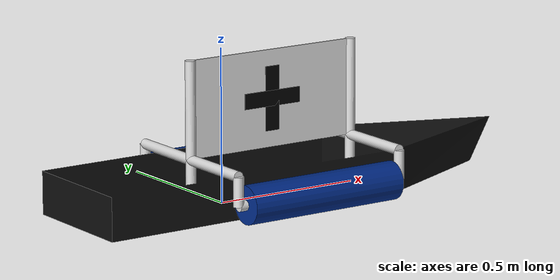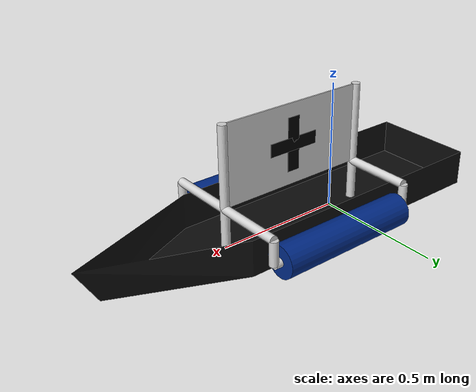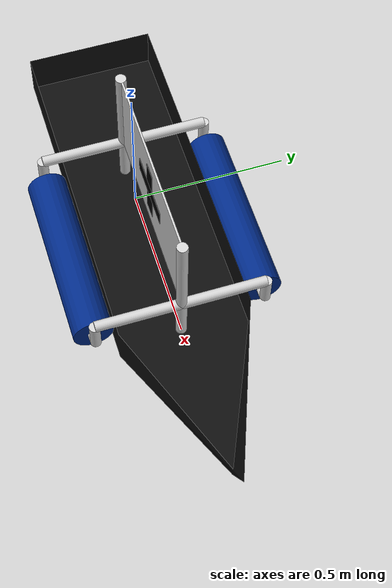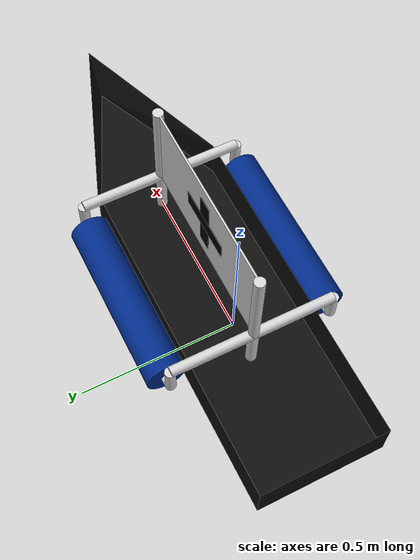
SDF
<?xml version="1.0"?>
<sdf version="1.9">
  <model name="roboboat_vessel_black">
    <link name="link">
      <inertial>
        <pose>0 0 0.02 0 0 0</pose>
        <mass>4</mass>
        <inertia>
          <ixx>0.15</ixx>
          <ixy>0</ixy>
          <ixz>0</ixz>
          <iyy>0.8</iyy>
          <iyz>0</iyz>
          <izz>0.9</izz>
        </inertia>
      </inertial>
      <collision name="hull_collision">
        <pose>0 0 0.0698 0 0 0</pose>
        <geometry>
          <box><size>1.0668 0.4064 0.1397</size></box>
        </geometry>
      </collision>
      <collision name="sign_collision">
        <pose>0.1906 0 0.316 0 0 0</pose>
        <geometry>
          <box><size>0.5795 0.02 0.3151</size></box>
        </geometry>
      </collision>
      <visual name="hull">
        <geometry>
          <mesh>
            <uri>model://roboboat_vessel_yellow/meshes/hull.obj</uri>
          </mesh>
        </geometry>
        <material>
          <ambient>0.0513 0.0513 0.0513 1</ambient>
          <diffuse>0.0513 0.0513 0.0513 1</diffuse>
          <specular>0.1 0.1 0.1 1</specular>
        </material>
      </visual>
      <visual name="sign">
        <pose>0.1906 0 0.316 0 0 0</pose>
        <geometry>
          <box><size>0.5795 0.006 0.3151</size></box>
        </geometry>
        <material>
          <ambient>0.8276 0.8276 0.8276 1</ambient>
          <diffuse>0.8276 0.8276 0.8276 1</diffuse>
          <specular>0.1 0.1 0.1 1</specular>
        </material>
      </visual>
      <visual name="symbol_h_0">
        <pose>0.1906 0.004 0.316 0 0 0</pose>
        <geometry>
          <box><size>0.2093 0.002 0.0507</size></box>
        </geometry>
        <material>
          <ambient>0.0044 0.0044 0.0044 1</ambient>
          <diffuse>0.0044 0.0044 0.0044 1</diffuse>
          <specular>0.1 0.1 0.1 1</specular>
        </material>
      </visual>
      <visual name="symbol_v_0">
        <pose>0.1906 0.004 0.316 0 0 0</pose>
        <geometry>
          <box><size>0.0507 0.002 0.2093</size></box>
        </geometry>
        <material>
          <ambient>0.0044 0.0044 0.0044 1</ambient>
          <diffuse>0.0044 0.0044 0.0044 1</diffuse>
          <specular>0.1 0.1 0.1 1</specular>
        </material>
      </visual>
      <visual name="symbol_h_1">
        <pose>0.1906 -0.004 0.316 0 0 0</pose>
        <geometry>
          <box><size>0.2093 0.002 0.0507</size></box>
        </geometry>
        <material>
          <ambient>0.0044 0.0044 0.0044 1</ambient>
          <diffuse>0.0044 0.0044 0.0044 1</diffuse>
          <specular>0.1 0.1 0.1 1</specular>
        </material>
      </visual>
      <visual name="symbol_v_1">
        <pose>0.1906 -0.004 0.316 0 0 0</pose>
        <geometry>
          <box><size>0.0507 0.002 0.2093</size></box>
        </geometry>
        <material>
          <ambient>0.0044 0.0044 0.0044 1</ambient>
          <diffuse>0.0044 0.0044 0.0044 1</diffuse>
          <specular>0.1 0.1 0.1 1</specular>
        </material>
      </visual>
      <visual name="upright_0">
        <pose>-0.1158 0 0.2368 0 0 0</pose>
        <geometry>
          <cylinder><radius>0.0167</radius><length>0.4735</length></cylinder>
        </geometry>
        <material>
          <ambient>0.8276 0.8276 0.8276 1</ambient>
          <diffuse>0.8276 0.8276 0.8276 1</diffuse>
          <specular>0.1 0.1 0.1 1</specular>
        </material>
      </visual>
      <visual name="crossbar_0">
        <pose>-0.1158 0 0.1564 1.5708 0 0</pose>
        <geometry>
          <cylinder><radius>0.0167</radius><length>0.5309</length></cylinder>
        </geometry>
        <material>
          <ambient>0.8276 0.8276 0.8276 1</ambient>
          <diffuse>0.8276 0.8276 0.8276 1</diffuse>
          <specular>0.1 0.1 0.1 1</specular>
        </material>
      </visual>
      <visual name="riser_0_0">
        <pose>-0.1158 -0.2654 0.1093 0 0 0</pose>
        <geometry>
          <cylinder><radius>0.0167</radius><length>0.0942</length></cylinder>
        </geometry>
        <material>
          <ambient>0.8276 0.8276 0.8276 1</ambient>
          <diffuse>0.8276 0.8276 0.8276 1</diffuse>
          <specular>0.1 0.1 0.1 1</specular>
        </material>
      </visual>
      <visual name="riser_0_1">
        <pose>-0.1158 0.2654 0.1093 0 0 0</pose>
        <geometry>
          <cylinder><radius>0.0167</radius><length>0.0942</length></cylinder>
        </geometry>
        <material>
          <ambient>0.8276 0.8276 0.8276 1</ambient>
          <diffuse>0.8276 0.8276 0.8276 1</diffuse>
          <specular>0.1 0.1 0.1 1</specular>
        </material>
      </visual>
      <visual name="upright_1">
        <pose>0.4971 0 0.2368 0 0 0</pose>
        <geometry>
          <cylinder><radius>0.0167</radius><length>0.4735</length></cylinder>
        </geometry>
        <material>
          <ambient>0.8276 0.8276 0.8276 1</ambient>
          <diffuse>0.8276 0.8276 0.8276 1</diffuse>
          <specular>0.1 0.1 0.1 1</specular>
        </material>
      </visual>
      <visual name="crossbar_1">
        <pose>0.4971 0 0.1564 1.5708 0 0</pose>
        <geometry>
          <cylinder><radius>0.0167</radius><length>0.5309</length></cylinder>
        </geometry>
        <material>
          <ambient>0.8276 0.8276 0.8276 1</ambient>
          <diffuse>0.8276 0.8276 0.8276 1</diffuse>
          <specular>0.1 0.1 0.1 1</specular>
        </material>
      </visual>
      <visual name="riser_1_0">
        <pose>0.4971 -0.2654 0.1093 0 0 0</pose>
        <geometry>
          <cylinder><radius>0.0167</radius><length>0.0942</length></cylinder>
        </geometry>
        <material>
          <ambient>0.8276 0.8276 0.8276 1</ambient>
          <diffuse>0.8276 0.8276 0.8276 1</diffuse>
          <specular>0.1 0.1 0.1 1</specular>
        </material>
      </visual>
      <visual name="riser_1_1">
        <pose>0.4971 0.2654 0.1093 0 0 0</pose>
        <geometry>
          <cylinder><radius>0.0167</radius><length>0.0942</length></cylinder>
        </geometry>
        <material>
          <ambient>0.8276 0.8276 0.8276 1</ambient>
          <diffuse>0.8276 0.8276 0.8276 1</diffuse>
          <specular>0.1 0.1 0.1 1</specular>
        </material>
      </visual>
      <visual name="noodle_0">
        <pose>0.1906 -0.2654 0.0622 0 1.5708 0</pose>
        <geometry>
          <cylinder><radius>0.0622</radius><length>0.5588</length></cylinder>
        </geometry>
        <material>
          <ambient>0 0.1619 0.5272 1</ambient>
          <diffuse>0 0.1619 0.5272 1</diffuse>
          <specular>0.1 0.1 0.1 1</specular>
        </material>
      </visual>
      <visual name="noodle_pipe_0">
        <pose>0.1906 -0.2654 0.0622 0 1.5708 0</pose>
        <geometry>
          <cylinder><radius>0.0167</radius><length>0.6129</length></cylinder>
        </geometry>
        <material>
          <ambient>0.8276 0.8276 0.8276 1</ambient>
          <diffuse>0.8276 0.8276 0.8276 1</diffuse>
          <specular>0.1 0.1 0.1 1</specular>
        </material>
      </visual>
      <visual name="noodle_1">
        <pose>0.1906 0.2654 0.0622 0 1.5708 0</pose>
        <geometry>
          <cylinder><radius>0.0622</radius><length>0.5588</length></cylinder>
        </geometry>
        <material>
          <ambient>0 0.1619 0.5272 1</ambient>
          <diffuse>0 0.1619 0.5272 1</diffuse>
          <specular>0.1 0.1 0.1 1</specular>
        </material>
      </visual>
      <visual name="noodle_pipe_1">
        <pose>0.1906 0.2654 0.0622 0 1.5708 0</pose>
        <geometry>
          <cylinder><radius>0.0167</radius><length>0.6129</length></cylinder>
        </geometry>
        <material>
          <ambient>0.8276 0.8276 0.8276 1</ambient>
          <diffuse>0.8276 0.8276 0.8276 1</diffuse>
          <specular>0.1 0.1 0.1 1</specular>
        </material>
      </visual>
    </link>
    <joint name="mooring" type="prismatic">
      <parent>world</parent>
      <child>link</child>
      <axis>
        <xyz>0 0 1</xyz>
      </axis>
    </joint>
    <plugin name="vrx::PolyhedraBuoyancyDrag" filename="libPolyhedraBuoyancyDrag.so">
      <linear_drag>25</linear_drag>
      <angular_drag>2</angular_drag>
      <buoyancy name="hull">
        <link_name>link</link_name>
        <pose>0 0 0.0698 0 0 0</pose>
        <geometry>
          <box><size>1.0668 0.4064 0.1397</size></box>
        </geometry>
      </buoyancy>
      <buoyancy name="noodle_0">
        <link_name>link</link_name>
        <pose>0.1906 -0.2654 0.0622 0 1.5708 0</pose>
        <geometry>
          <cylinder><radius>0.0622</radius><length>0.5588</length></cylinder>
        </geometry>
      </buoyancy>
      <buoyancy name="noodle_1">
        <link_name>link</link_name>
        <pose>0.1906 0.2654 0.0622 0 1.5708 0</pose>
        <geometry>
          <cylinder><radius>0.0622</radius><length>0.5588</length></cylinder>
        </geometry>
      </buoyancy>
      <wavefield>
        <topic>/vrx/wavefield/parameters</topic>
      </wavefield>
    </plugin>
    <plugin filename="gz-sim-label-system" name="gz::sim::systems::Label">
      <label>60</label>
    </plugin>
  </model>
</sdf>
